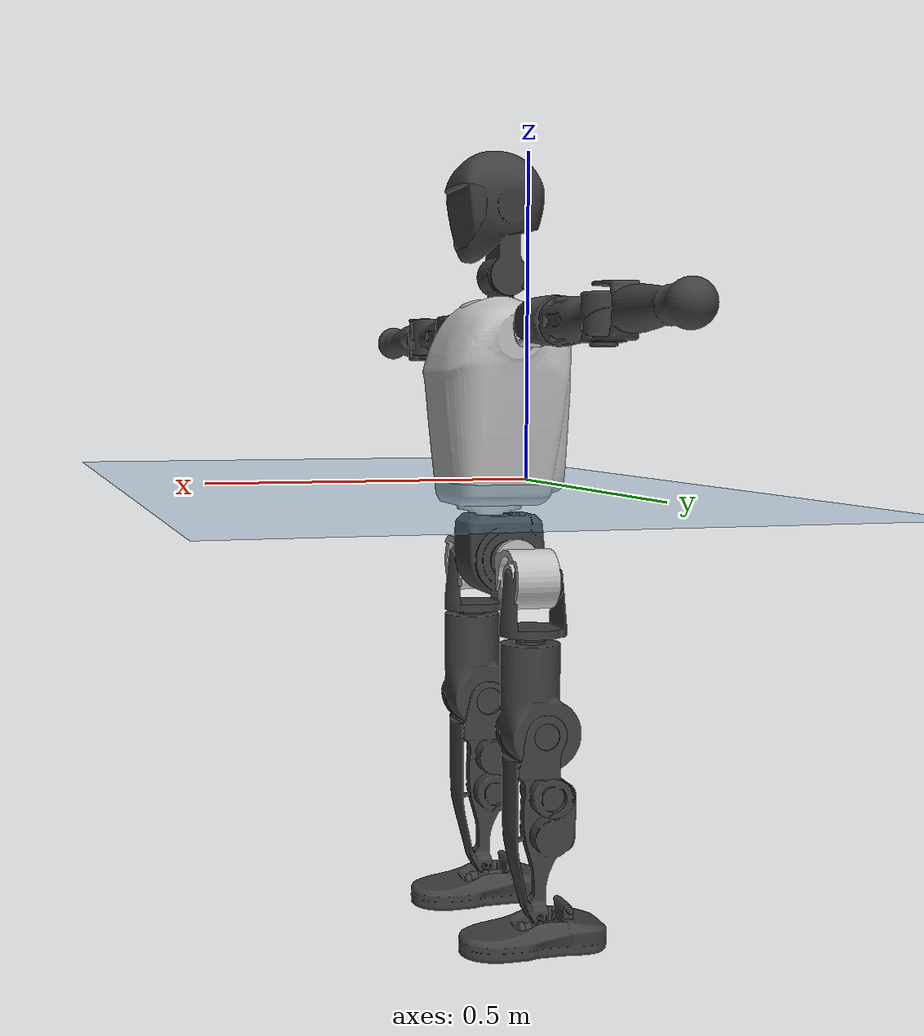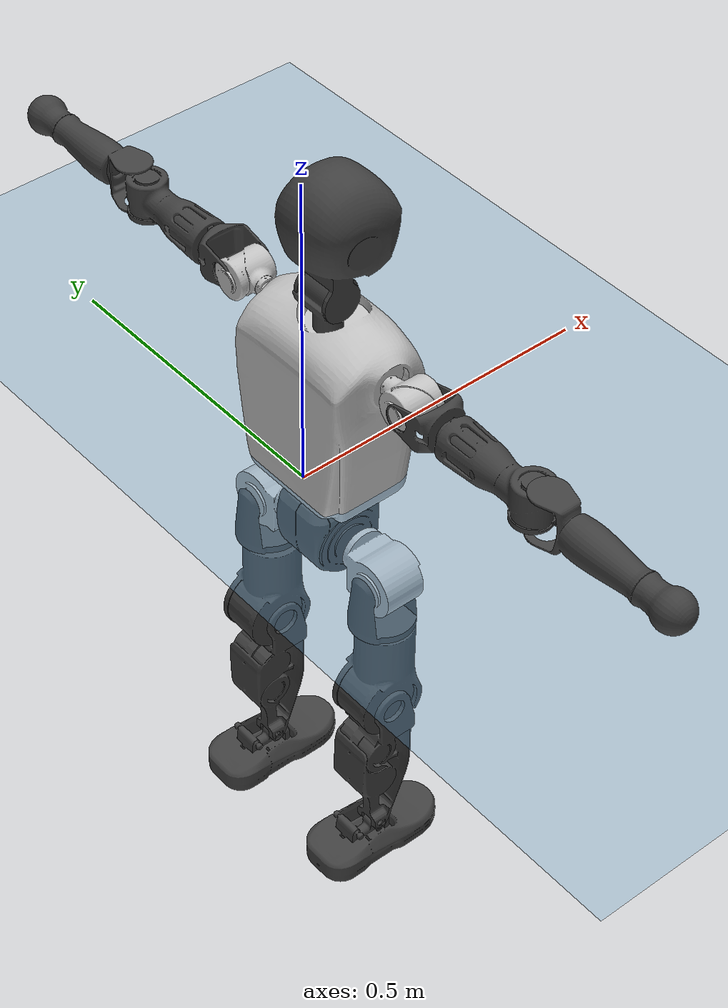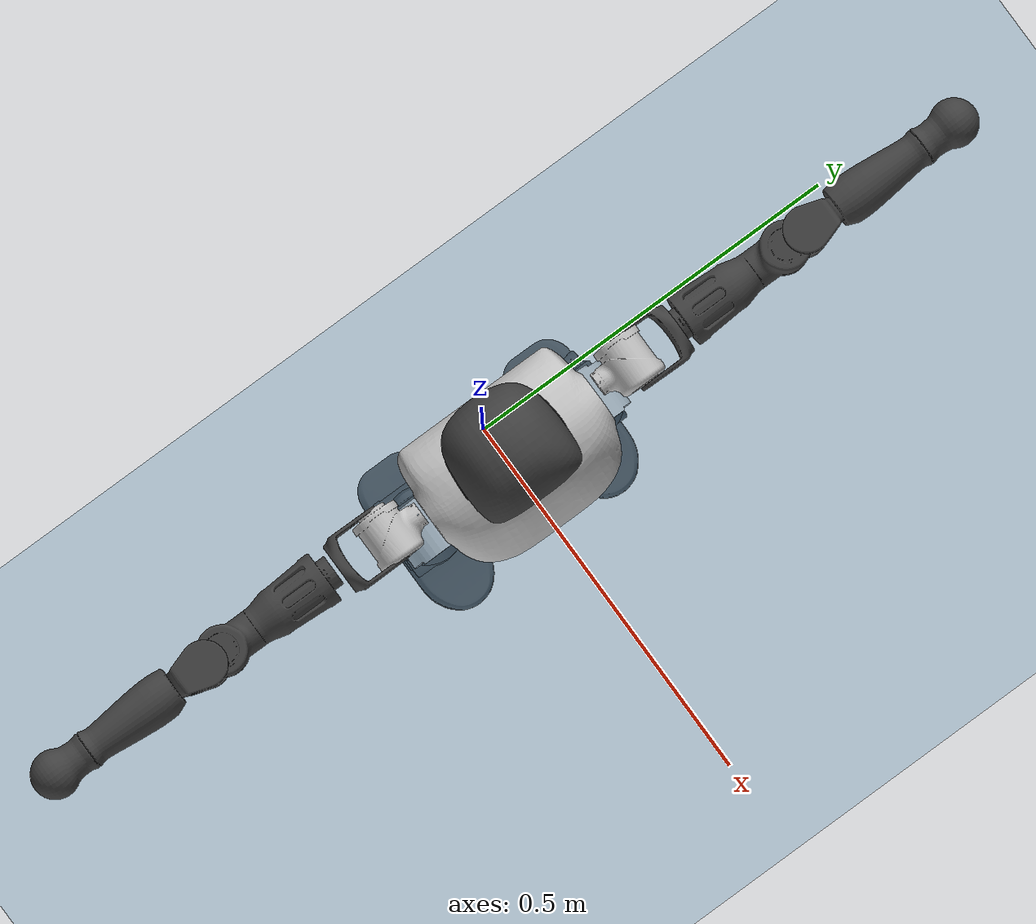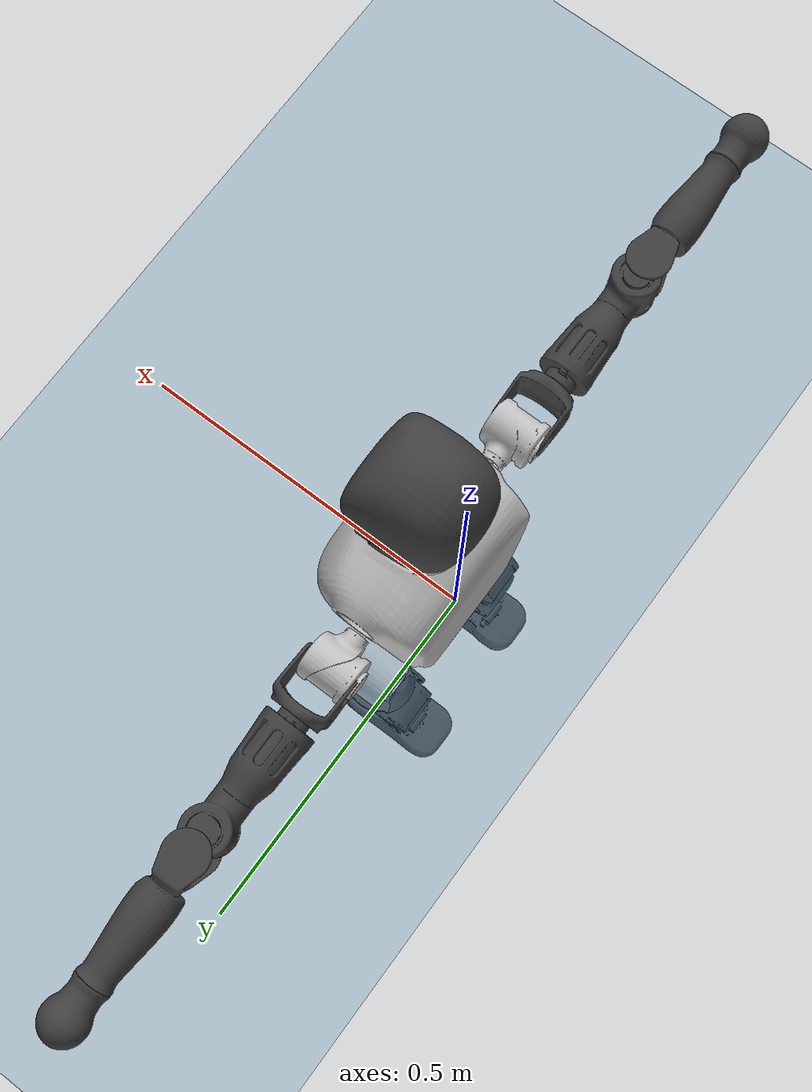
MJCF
<mujoco model="T1">
  <compiler angle="radian" assetdir="assets" balanceinertia="true" inertiafromgeom="false"/>

  <option timestep="0.005" density="1.2" viscosity="2e-05"/>

  <size nkey="1"/>

  <visual>
    <quality shadowsize="8192"/>
    <map shadowclip="0.5"/>
  </visual>

  <default>
    <default class="/">
      <joint armature="0.01" damping="0.01" frictionloss="0.1"/>
      <geom contype="0" conaffinity="0" group="1" solref="-1000 -80"/>
      <site size="0.01 0.005 0.005" group="5"/>
      <general forcelimited="true" biastype="affine" gainprm="25" biasprm="0 -25 -0.6"/>
      <default class="t1">
        <geom rgba="0.25 0.25 0.25 1"/>
        <default class="visual">
          <geom type="mesh" group="2"/>
        </default>
        <default class="collision">
          <geom group="3"/>
        </default>
        <default class="foot">
          <geom size="0.1115 0.05 0.015" type="box" condim="6" group="4" priority="1" solimp="0.015 1 0.015"/>
        </default>
        <default class="reward_collision_sphere">
          <geom group="5" rgba="1 0 0 1"/>
        </default>
      </default>
    </default>
  </default>

  <asset>
    <texture type="skybox" colorspace="auto" name="//unnamed_texture_0" builtin="gradient" rgb1="0.95 0.95 0.95" rgb2="0.95 0.95 0.95" width="100" height="600"/>
    <texture type="2d" colorspace="auto" name="texplane" builtin="checker" rgb1="0.345 0.575 0.748" rgb2="0.345 0.575 0.748" markrgb="1 1 1" width="512" height="512"/>
    <material name="MatPlane" class="/" texture="texplane" texuniform="true" texrepeat="2 2" specular="0.9"/>
    <mesh name="Trunk" class="/" file="Trunk.stl"/>
    <mesh name="H1" class="/" file="H1.stl"/>
    <mesh name="H2" class="/" file="H2.stl"/>
    <mesh name="AL1" class="/" file="AL1.stl"/>
    <mesh name="AL2" class="/" file="AL2.stl"/>
    <mesh name="AL3" class="/" file="AL3.stl"/>
    <mesh name="left_hand_link" class="/" file="left_hand_link.stl"/>
    <mesh name="AR1" class="/" file="AR1.stl"/>
    <mesh name="AR2" class="/" file="AR2.stl"/>
    <mesh name="AR3" class="/" file="AR3.stl"/>
    <mesh name="right_hand_link" class="/" file="right_hand_link.stl"/>
    <mesh name="Waist" class="/" file="Waist.stl"/>
    <mesh name="Hip_Pitch_Left" class="/" file="Hip_Pitch_Left.stl"/>
    <mesh name="Hip_Roll_Left" class="/" file="Hip_Roll_Left.stl"/>
    <mesh name="Hip_Yaw_Left" class="/" file="Hip_Yaw_Left.stl"/>
    <mesh name="Shank_Left" class="/" file="Shank_Left.stl"/>
    <mesh name="Ankle_Cross_Left" class="/" file="Ankle_Cross_Left.stl"/>
    <mesh name="left_foot_link" class="/" file="left_foot_link.stl"/>
    <mesh name="Hip_Pitch_Right" class="/" file="Hip_Pitch_Right.stl"/>
    <mesh name="Hip_Roll_Right" class="/" file="Hip_Roll_Right.stl"/>
    <mesh name="Hip_Yaw_Right" class="/" file="Hip_Yaw_Right.stl"/>
    <mesh name="Shank_Right" class="/" file="Shank_Right.stl"/>
    <mesh name="Ankle_Cross_Right" class="/" file="Ankle_Cross_Right.stl"/>
    <mesh name="right_foot_link" class="/" file="right_foot_link.stl"/>
  </asset>

  <worldbody>
    <geom name="floor" class="/" size="100 100 0.125" type="plane" group="0" material="MatPlane"/>
    <light name="toplight_shadow" class="/" pos="0 0 5" dir="0.0990148 0.0990148 -0.990148" type="directional" ambient="0.04 0.04 0.04" diffuse="0.55 0.55 0.55" specular="0.12 0.12 0.12"/>
    <light name="toplight_fill" class="/" pos="0 0 5" dir="0.0990148 0.0990148 -0.990148" type="directional" castshadow="false" ambient="0.04 0.04 0.04" diffuse="0.3 0.3 0.3" specular="0.08 0.08 0.08"/>
    <body name="trunk" childclass="t1" pos="-7.89332e-05 0.00396595 -0.00109763" quat="1 0.000712731 6.00769e-05 -0.000293984">
      <inertial pos="0.0410996 -0.00141301 0.109177" quat="0.999941 -0.00876146 -0.00465159 0.00435945" mass="12.5226" diaginertia="0.0236047 0.174446 0.0692941"/>
      <joint name="//unnamed_joint_0" type="free" armature="0" damping="0" frictionloss="0"/>
      <geom name="//unnamed_geom_1" class="visual" rgba="0.76 0.76 0.76 1" mesh="Trunk"/>
      <geom name="//unnamed_geom_2" class="collision" size="0.0750721 0.100096 0.150144" pos="0.0458867 0 0.124905" type="box"/>
      <geom name="//unnamed_geom_3" class="reward_collision_sphere" size="0.11511" pos="0.0458867 0 0.104088"/>
      <geom name="//unnamed_geom_4" class="reward_collision_sphere" size="0.0150144" pos="0.0458867 0.101764 0"/>
      <geom name="//unnamed_geom_5" class="reward_collision_sphere" size="0.0150144" pos="0.0458867 -0.101764 0"/>
      <geom name="//unnamed_geom_6" class="reward_collision_sphere" size="0.0150144" pos="0.0458867 0.128103 0.187358"/>
      <geom name="//unnamed_geom_7" class="reward_collision_sphere" size="0.0150144" pos="0.0458867 -0.128103 0.187358"/>
      <site name="imu" pos="0.0103571 0.0267448 0.00813067" size="0.0100096"/>
      <camera name="track" pos="0 -2.39445 0" quat="0.707107 0.707107 0 0" mode="trackcom"/>
      <camera name="ego_camera" pos="0.093303 0 0.437169" quat="-0.5 -0.5 0.5 0.5"/>
      <body name="H1" pos="0.0446256 -0.00303179 0.249771" quat="1 0.000480586 0.000172624 0.000101721">
        <inertial pos="-0.00170504 -0.000640619 0.0580615" quat="0.768894 -0.0498859 0.00631633 0.637396" mass="0.443818" diaginertia="6.63804e-05 0.000542905 0.000191048"/>
        <joint name="AAHead_yaw" pos="0 0 0" axis="0.00917079 0.0256494 0.999629" range="-1.52472 1.61832" armature="0.00923723" damping="0.0112928" frictionloss="0.114225"/>
        <geom name="//unnamed_geom_8" class="visual" mesh="H1"/>
        <body name="H2" pos="-0.0048348 -0.00258438 0.0617883" quat="0.999999 -0.000732804 0.000944389 -6.09638e-05">
          <inertial pos="0.00684706 0.00795368 0.102756" quat="0.988655 0.105252 -0.0664606 -0.0840638" mass="0.661808" diaginertia="0.000569513 0.00541987 0.00218034"/>
          <joint name="Head_pitch" pos="0 0 0" axis="0.0120324 -0.999826 0.0142629" range="-1.26758 0.335867" armature="0.0110633" damping="0.000220141" frictionloss="0.0979425"/>
          <geom name="//unnamed_geom_9" class="visual" mesh="H2"/>
          <geom name="//unnamed_geom_10" class="collision" size="0.0800769" pos="0.00764778 0 0.114497"/>
          <geom name="//unnamed_geom_11" class="reward_collision_sphere" size="0.0900865" pos="0.0152956 0 0.104088"/>
        </body>
      </body>
      <body name="AL1" pos="0.046248 0.128795 0.230357" quat="1 -0.000523545 0.000371703 0.000537262">
        <inertial pos="0.00144344 0.0549348 0.00658241" quat="0.485416 0.519173 -0.500423 0.494376" mass="0.476355" diaginertia="0.000315308 0.00277694 0.000312159"/>
        <joint name="Left_Shoulder_Pitch" pos="0 0 0" axis="0.00448391 0.999704 0.023903" range="-3.29928 1.22016" armature="0.00916811" damping="0" frictionloss="0.111269"/>
        <geom name="//unnamed_geom_12" class="visual" rgba="0.76 0.76 0.76 1" mesh="AL1"/>
        <body name="AL2" pos="0.00134636 0.0599225 0.00428711" quat="0.999991 -0.00280446 -0.0014482 -0.00274949">
          <inertial pos="0.00606967 0.0531472 -0.000444176" quat="0.48605 0.512029 -0.489592 0.511743" mass="0.165008" diaginertia="0.000103522 0.000862058 0.000221248"/>
          <joint name="Left_Shoulder_Roll" pos="0 0 0" axis="-0.999232 -0.0376667 -0.0107549" stiffness="0.034403" range="-1.68836 1.71706" armature="0.00994994" damping="0.0430102" frictionloss="0.072727"/>
          <geom name="//unnamed_geom_13" class="visual" mesh="AL2"/>
          <body name="AL3" pos="-0.00216634 0.0650655 -0.00213417" quat="0.999995 -0.00149831 0.00109133 0.00245308">
            <inertial pos="-0.00119814 0.106664 -0.00094428" quat="0.708149 0.706032 0.000769225 0.00650876" mass="0.931319" diaginertia="0.00345149 0.0299493 0.000836254"/>
            <joint name="Left_Elbow_Pitch" pos="0 0 0" axis="0.0150285 -0.999798 -0.0133621" stiffness="0.0201721" range="-2.42699 2.4064" armature="0.00682214" damping="0.033473" frictionloss="0.0829985"/>
            <geom name="//unnamed_geom_14" class="visual" mesh="AL3"/>
            <geom name="//unnamed_geom_15" class="collision" size="0.0300288 0.0750721" pos="0 0.0598613 0" quat="0.707105 0.707108 0 0" type="cylinder"/>
            <geom name="//unnamed_geom_16" class="reward_collision_sphere" size="0.0360346"/>
            <body name="left_hand_link" pos="-0.000497198 0.177115 0.00647152" quat="0.999999 -0.000359511 -0.00119633 6.30363e-05">
              <inertial pos="2.94454e-05 0.13201 0.00444305" quat="0.701669 0.712466 -0.00642458 0.00331611" mass="0.32237" diaginertia="0.00211723 0.0194126 0.000268148"/>
              <joint name="Left_Elbow_Yaw" pos="0 0 0" axis="0.00046967 -0.00843591 0.999964" range="-2.45768 0.0250728" armature="0.00931297" damping="0.0184017" frictionloss="0.0923434"/>
              <geom name="//unnamed_geom_17" class="visual" mesh="left_hand_link"/>
              <geom name="//unnamed_geom_18" class="collision" size="0.0300288 0.0875841" pos="0 0.155639 0" quat="0.707105 0.707108 0 0" type="cylinder"/>
              <geom name="//unnamed_geom_19" class="reward_collision_sphere" size="0.050048"/>
              <geom name="//unnamed_geom_20" class="reward_collision_sphere" size="0.0350336" pos="0 0.131695 0"/>
              <geom name="//unnamed_geom_21" class="reward_collision_sphere" size="0.0350336" pos="0 0.257404 0"/>
            </body>
          </body>
        </body>
      </body>
      <body name="AR1" pos="0.045129 -0.126041 0.227891" quat="1 0.00019327 0.000251055 -2.78933e-05">
        <inertial pos="0.0008198 -0.0483613 -0.00581637" quat="0.50854 0.49885 -0.498856 0.493638" mass="0.530627" diaginertia="0.000382715 0.00316391 0.000350276"/>
        <joint name="Right_Shoulder_Pitch" pos="0 0 0" axis="-0.00427056 -0.999985 -0.00348764" stiffness="0.00799661" range="-1.25026 3.30947" armature="0.0109179" damping="0.0130856" frictionloss="0.109488"/>
        <geom name="//unnamed_geom_22" class="visual" rgba="0.76 0.76 0.76 1" mesh="AR1"/>
        <body name="AR2" pos="-0.00301899 -0.0605934 0.0029312" quat="1 -7.32476e-05 0.000625713 0.000655554">
          <inertial pos="0.00391899 -0.0454549 0.00654534" quat="0.51597 0.488108 -0.506806 0.488542" mass="0.161172" diaginertia="0.000110142 0.00093215 0.000232514"/>
          <joint name="Right_Shoulder_Roll" pos="0 0 0" axis="-0.999825 -0.0171136 -0.00760233" range="-1.76072 1.46633" armature="0.00967347" damping="0.0297302" frictionloss="0.0965446"/>
          <geom name="//unnamed_geom_23" class="visual" mesh="AR2"/>
          <body name="AR3" pos="-0.00323788 -0.0742617 0.00172212" quat="0.999999 0.000136166 -0.0010893 -0.000418043">
            <inertial pos="0.000548339 -0.10096 -0.00194888" quat="0.707813 0.7064 -5.49083e-05 0.00014998" mass="1.05903" diaginertia="0.00340403 0.0306023 0.000753528"/>
            <joint name="Right_Elbow_Pitch" pos="0 0 0" axis="0.00016373 0.999996 -0.0028037" stiffness="0.00935602" range="-2.25998 2.28088" armature="0.00698354" damping="0.00614126" frictionloss="0.128481"/>
            <geom name="//unnamed_geom_24" class="visual" mesh="AR3"/>
            <geom name="//unnamed_geom_25" class="collision" size="0.0300288 0.0750721" pos="0 -0.0598613 0" quat="0.707105 0.707108 0 0" type="cylinder"/>
            <geom name="//unnamed_geom_26" class="reward_collision_sphere" size="0.0360346"/>
            <body name="right_hand_link" pos="0.000472402 -0.173239 -0.00239895" quat="1 -0.00063127 -0.000529855 -0.000138903">
              <inertial pos="-0.00124163 -0.133186 0.00794628" quat="0.705728 0.707652 -0.0342348 0.00218933" mass="0.291713" diaginertia="0.00226692 0.0200097 0.00025501"/>
              <joint name="Right_Elbow_Yaw" pos="0 0 0" axis="0.00859776 -0.000630355 0.999963" stiffness="0.0271727" range="0.116474 2.30107" armature="0.00923674" damping="0" frictionloss="0.106883"/>
              <geom name="//unnamed_geom_27" class="visual" mesh="right_hand_link"/>
              <geom name="//unnamed_geom_28" class="collision" size="0.0300288 0.0875841" pos="0 -0.155639 0" quat="0.707105 0.707108 0 0" type="cylinder"/>
              <geom name="//unnamed_geom_29" class="reward_collision_sphere" size="0.050048"/>
              <geom name="//unnamed_geom_30" class="reward_collision_sphere" size="0.0350336" pos="0 -0.131695 0"/>
              <geom name="//unnamed_geom_31" class="reward_collision_sphere" size="0.0350336" pos="0 -0.257404 0"/>
            </body>
          </body>
        </body>
      </body>
      <body name="Waist" pos="0.0471319 -0.000134722 -0.1178" quat="1 6.92808e-05 -3.40541e-05 4.44665e-05">
        <inertial pos="0.00486829 0.000679896 0.00670912" quat="0.984136 -0.0039996 -0.177365 0.00145008" mass="2.65023" diaginertia="0.00147231 0.0126553 0.00579622"/>
        <joint name="Waist" pos="0 0 0" axis="0.0198413 0.0158853 0.999677" stiffness="0.0405286" range="-1.58173 1.52726" armature="0.01013" damping="0" frictionloss="0.122934"/>
        <geom name="//unnamed_geom_32" class="visual" mesh="Waist"/>
        <body name="Hip_Pitch_Left" pos="-0.00454171 0.121417 -0.000511374" quat="1 3.73961e-05 0.00020137 -0.000191952">
          <inertial pos="-0.00610725 -0.0093522 -0.0135968" quat="0.969344 0.242754 0.0350672 -0.0145896" mass="0.999189" diaginertia="0.000487853 0.00365384 0.00154983"/>
          <joint name="Left_Hip_Pitch" pos="0 0 0" axis="0.000611279 1 -1.18872e-05" range="-1.79631 1.45826" armature="0.00882371" damping="0.0283689" frictionloss="0.0894837"/>
          <geom name="//unnamed_geom_33" class="visual" rgba="0.76 0.76 0.76 1" mesh="Hip_Pitch_Left"/>
          <body name="Hip_Roll_Left" pos="-0.00454044 0.00181669 -0.0264551" quat="1 0.000616463 3.15738e-05 0.000430574">
            <inertial pos="0.00323682 -0.0041639 -0.0569854" quat="0.703947 -0.00343735 0.00764276 0.710203" mass="0.431733" diaginertia="0.00045928 0.00430936 0.000692364"/>
            <joint name="Left_Hip_Roll" pos="0 0 0" axis="-1 9.51454e-05 -0.000513157" range="-1.58978 0.194428" armature="0.0109302" damping="0.0165808" frictionloss="0.114576"/>
            <geom name="//unnamed_geom_34" class="visual" mesh="Hip_Roll_Left"/>
            <geom name="//unnamed_geom_35" class="reward_collision_sphere" size="0.0550528"/>
            <body name="Hip_Yaw_Left" pos="9.20634e-05 -0.00357699 -0.088842" quat="1 -0.000438818 0.000354819 -0.000460246">
              <inertial pos="-0.00601511 -0.000919273 -0.0951337" quat="0.697559 -0.0175467 -0.0594594 0.713841" mass="2.29958" diaginertia="0.00685923 0.0645085 0.00317545"/>
              <joint name="Left_Hip_Yaw" pos="0 0 0" axis="0.0288767 -0.00352633 -0.999577" range="-1.02418 1.07764" armature="0.00889369" damping="0.00227232" frictionloss="0.105266"/>
              <geom name="//unnamed_geom_36" class="visual" mesh="Hip_Yaw_Left"/>
              <geom name="//unnamed_geom_37" class="collision" size="0.050048 0.0800769" type="cylinder"/>
              <body name="Shank_Left" pos="-0.0138887 -0.00541628 -0.134688" quat="0.999999 -0.000585952 0.000241858 -0.00127619">
                <inertial pos="-0.002488 0.00722807 -0.128973" quat="0.996808 0.00444433 -0.0234499 0.0761816" mass="1.69687" diaginertia="0.00803103 0.0849306 0.00201447"/>
                <joint name="Left_Knee_Pitch" pos="0 0 0" axis="0.00363421 0.999982 -0.00487314" range="-0.0220525 2.32732" armature="0.0105455" damping="0.00356315" frictionloss="0.0585196"/>
                <geom name="//unnamed_geom_38" class="visual" mesh="Shank_Left"/>
                <geom name="//unnamed_geom_39" class="collision" size="0.050048 0.0750721" pos="0 0 -0.124905" type="cylinder"/>
                <geom name="//unnamed_geom_40" class="reward_collision_sphere" size="0.0650625"/>
                <body name="Ankle_Cross_Left" pos="0.000918441 0.00198849 -0.28929" quat="1 8.4493e-05 3.3991e-05 -0.000161496">
                  <inertial pos="-0.00446945 -0.00171699 -0.00987332" quat="0.436391 0.547228 0.55647 0.447712" mass="0.0832212" diaginertia="7.95416e-06 7.56519e-05 1.48124e-05"/>
                  <joint name="Left_Ankle_Pitch" pos="0 0 0" axis="-0.0351694 0.999373 0.0040753" stiffness="0.0332149" range="-0.882706 0.315049" armature="0.0102047" damping="0.0054881" frictionloss="0.102932"/>
                  <geom name="//unnamed_geom_41" class="visual" mesh="Ankle_Cross_Left"/>
                  <body name="left_foot_link" pos="-0.00301611 -0.00126323 -0.0131164" quat="0.999994 0.00202515 -0.0019017 -0.0022316">
                    <inertial pos="-0.00619528 0.00119955 -0.00966145" quat="0.00967589 0.623322 -0.0179675 0.781699" mass="0.66427" diaginertia="0.000700962 0.00580757 0.00277538"/>
                    <joint name="Left_Ankle_Roll" pos="0 0 0" axis="-0.999917 0.0045836 0.0120795" range="-0.445732 0.464689" armature="0.00981687" damping="0.0203831" frictionloss="0.102371"/>
                    <geom name="//unnamed_geom_42" class="visual" mesh="left_foot_link"/>
                    <geom name="left_foot" class="foot" size="0.095326 0.0497848 0.0195978" pos="0.00764778 0 -0.0156132"/>
                    <geom name="//unnamed_geom_44" class="reward_collision_sphere" size="0.05205" pos="0.00764778 0 -0.0156132"/>
                    <geom name="//unnamed_geom_45" class="reward_collision_sphere" size="0.0300288" pos="0.0726539 -0.0275362 -0.0156132"/>
                    <geom name="//unnamed_geom_46" class="reward_collision_sphere" size="0.0300288" pos="-0.0535345 -0.0275362 -0.0156132"/>
                    <site name="left_foot" class="foot" pos="0.00764778 0 -0.0156132" size="0.0100096"/>
                  </body>
                </body>
              </body>
            </body>
          </body>
        </body>
        <body name="Hip_Pitch_Right" pos="0.00371484 -0.124301 -0.00117845" quat="0.999999 0.0007053 0.000317573 0.00097473">
          <inertial pos="0.00192763 0.00779366 -0.0229117" quat="0.972214 -0.232968 0.0229034 -0.0014074" mass="0.983014" diaginertia="0.000471171 0.00345632 0.0014421"/>
          <joint name="Right_Hip_Pitch" pos="0 0 0" axis="0.0106476 -0.999931 0.00499177" stiffness="0.00445048" range="-1.57014 1.74722" armature="0.00892738" damping="0.019811" frictionloss="0.0848821"/>
          <geom name="//unnamed_geom_47" class="visual" rgba="0.76 0.76 0.76 1" mesh="Hip_Pitch_Right"/>
          <body name="Hip_Roll_Right" pos="-0.00491163 -0.00139241 -0.020311" quat="1 -2.74932e-06 -3.75653e-05 0.000276207">
            <inertial pos="0.00593475 0.00103741 -0.0521426" quat="0.705583 -0.00842696 -0.00929654 0.708516" mass="0.35493" diaginertia="0.000459124 0.00364089 0.000615096"/>
            <joint name="Right_Hip_Roll" pos="0 0 0" axis="-1 0.000319196 -0.000367355" stiffness="0.000564153" range="-0.167308 1.52285" armature="0.00941052" damping="0.00522195" frictionloss="0.105042"/>
            <geom name="//unnamed_geom_48" class="visual" mesh="Hip_Roll_Right"/>
            <geom name="//unnamed_geom_49" class="reward_collision_sphere" size="0.0550528"/>
            <body name="Hip_Yaw_Right" pos="0.00178891 -0.00217253 -0.0842081" quat="0.999999 -1.80126e-05 0.000558634 -0.000870387">
              <inertial pos="-0.00478459 0.00499571 -0.099517" quat="0.72098 -0.0336581 -0.0298483 0.691494" mass="2.00802" diaginertia="0.00655506 0.0551128 0.00311552"/>
              <joint name="Right_Hip_Yaw" pos="0 0 0" axis="0.000231825 -0.00110858 -0.999999" range="-1.06497 1.00603" armature="0.0134702" damping="0.0101237" frictionloss="0.0898168"/>
              <geom name="//unnamed_geom_50" class="visual" mesh="Hip_Yaw_Right"/>
              <geom name="//unnamed_geom_51" class="collision" size="0.050048 0.0800769" type="cylinder"/>
              <body name="Shank_Right" pos="-0.016734 -0.00152539 -0.139713" quat="1 3.4211e-05 1.43237e-06 8.00685e-05">
                <inertial pos="-0.0116772 -0.00831712 -0.127034" quat="0.999251 0.0113993 -0.0298969 -0.0217421" mass="1.641" diaginertia="0.00752646 0.0779073 0.00222745"/>
                <joint name="Right_Knee_Pitch" pos="0 0 0" axis="0.0320039 -0.999469 -0.00611578" range="-2.3348 -0.000834648" armature="0.0107253" damping="0.00719466" frictionloss="0.0971485"/>
                <geom name="//unnamed_geom_52" class="visual" mesh="Shank_Right"/>
                <geom name="//unnamed_geom_53" class="collision" size="0.050048 0.0750721" pos="0 0 -0.124905" type="cylinder"/>
                <geom name="//unnamed_geom_54" class="reward_collision_sphere" size="0.0650625"/>
                <body name="Ankle_Cross_Right" pos="-0.0013961 0.000924105 -0.291165" quat="1 0.000292213 0.000390726 -0.000495922">
                  <inertial pos="-0.00225858 -0.00138599 -0.00814614" quat="0.443281 0.548034 0.55438 0.44252" mass="0.0763812" diaginertia="7.27158e-06 6.33456e-05 1.41074e-05"/>
                  <joint name="Right_Ankle_Pitch" pos="0 0 0" axis="0.0345737 -0.999168 0.0216404" range="-0.365773 0.902137" armature="0.0108171" damping="0.0102053" frictionloss="0.105496"/>
                  <geom name="//unnamed_geom_55" class="visual" mesh="Ankle_Cross_Right"/>
                  <body name="right_foot_link" pos="-0.000566241 0.00405211 -0.0161791" quat="1 -0.000669141 0.000491143 0.000247265">
                    <inertial pos="-0.00708613 -0.000822956 -0.0117067" quat="-0.00740592 0.618349 0.0157507 0.785711" mass="0.703018" diaginertia="0.000633899 0.00569773 0.0026879"/>
                    <joint name="Right_Ankle_Roll" pos="0 0 0" axis="-0.999781 0.00966784 -0.0185427" range="-0.444229 0.431079" armature="0.01024" damping="0.0013758" frictionloss="0.130629"/>
                    <geom name="//unnamed_geom_56" class="visual" mesh="right_foot_link"/>
                    <geom name="right_foot" class="foot" size="0.0981533 0.04749 0.0161711" pos="0.00764778 0 -0.0156132"/>
                    <geom name="//unnamed_geom_58" class="reward_collision_sphere" size="0.0400384"/>
                    <geom name="//unnamed_geom_59" class="reward_collision_sphere" size="0.0300288" pos="0.00764778 0 -0.0156132"/>
                    <geom name="//unnamed_geom_60" class="reward_collision_sphere" size="0.0300288" pos="0.0726539 0.0275362 -0.0156132"/>
                    <geom name="//unnamed_geom_61" class="reward_collision_sphere" size="0.0300288" pos="-0.0535345 0.0275362 -0.0156132"/>
                    <site name="right_foot" class="foot" pos="0.00764778 0 -0.0156132" size="0.0100096"/>
                  </body>
                </body>
              </body>
            </body>
          </body>
        </body>
      </body>
    </body>
  </worldbody>

  <contact>
    <pair class="/" geom1="floor" geom2="left_foot" name="//unnamed_contact_0"/>
    <pair class="/" geom1="floor" geom2="right_foot" name="//unnamed_contact_1"/>
  </contact>

  <actuator>
    <general name="AAHead_yaw" class="/" joint="AAHead_yaw" forcerange="-8.37939 8.37939" gainprm="23.8835" biasprm="0 -23.8835 -0.645082"/>
    <general name="Head_pitch" class="/" joint="Head_pitch" forcerange="-7.13679 7.13679" gainprm="23.8835" biasprm="0 -23.8835 -0.645082"/>
    <general name="Left_Shoulder_Pitch" class="/" joint="Left_Shoulder_Pitch" forcerange="-18.6102 18.6102" gainprm="23.8835" biasprm="0 -23.8835 -0.645082"/>
    <general name="Left_Shoulder_Roll" class="/" joint="Left_Shoulder_Roll" forcerange="-17.9099 17.9099" gainprm="23.8835" biasprm="0 -23.8835 -0.645082"/>
    <general name="Left_Elbow_Pitch" class="/" joint="Left_Elbow_Pitch" forcerange="-15.5414 15.5414" gainprm="23.8835" biasprm="0 -23.8835 -0.645082"/>
    <general name="Left_Elbow_Yaw" class="/" joint="Left_Elbow_Yaw" forcerange="-13.1762 13.1762" gainprm="23.8835" biasprm="0 -23.8835 -0.645082"/>
    <general name="Right_Shoulder_Pitch" class="/" joint="Right_Shoulder_Pitch" forcerange="-17.8703 17.8703" gainprm="23.8835" biasprm="0 -23.8835 -0.645082"/>
    <general name="Right_Shoulder_Roll" class="/" joint="Right_Shoulder_Roll" forcerange="-15.4886 15.4886" gainprm="23.8835" biasprm="0 -23.8835 -0.645082"/>
    <general name="Right_Elbow_Pitch" class="/" joint="Right_Elbow_Pitch" forcerange="-16.7723 16.7723" gainprm="23.8835" biasprm="0 -23.8835 -0.645082"/>
    <general name="Right_Elbow_Yaw" class="/" joint="Right_Elbow_Yaw" forcerange="-20.1741 20.1741" gainprm="23.8835" biasprm="0 -23.8835 -0.645082"/>
    <general name="Waist" class="/" joint="Waist" forcerange="-30.3339 30.3339" gainprm="23.8835" biasprm="0 -23.8835 -0.645082"/>
    <general name="Left_Hip_Pitch" class="/" joint="Left_Hip_Pitch" forcerange="-42.3585 42.3585" gainprm="23.8835" biasprm="0 -23.8835 -0.645082"/>
    <general name="Left_Hip_Roll" class="/" joint="Left_Hip_Roll" forcerange="-27.6072 27.6072" gainprm="23.8835" biasprm="0 -23.8835 -0.645082"/>
    <general name="Left_Hip_Yaw" class="/" joint="Left_Hip_Yaw" forcerange="-31.2093 31.2093" gainprm="23.8835" biasprm="0 -23.8835 -0.645082"/>
    <general name="Left_Knee_Pitch" class="/" joint="Left_Knee_Pitch" forcerange="-59.8421 59.8421" gainprm="23.8835" biasprm="0 -23.8835 -0.645082"/>
    <general name="Left_Ankle_Pitch" class="/" joint="Left_Ankle_Pitch" forcerange="-21.1356 21.1356" gainprm="23.8835" biasprm="0 -23.8835 -0.645082"/>
    <general name="Left_Ankle_Roll" class="/" joint="Left_Ankle_Roll" forcerange="-14.9042 14.9042" gainprm="23.8835" biasprm="0 -23.8835 -0.645082"/>
    <general name="Right_Hip_Pitch" class="/" joint="Right_Hip_Pitch" forcerange="-41.7316 41.7316" gainprm="23.8835" biasprm="0 -23.8835 -0.645082"/>
    <general name="Right_Hip_Roll" class="/" joint="Right_Hip_Roll" forcerange="-30.1522 30.1522" gainprm="23.8835" biasprm="0 -23.8835 -0.645082"/>
    <general name="Right_Hip_Yaw" class="/" joint="Right_Hip_Yaw" forcerange="-32.1712 32.1712" gainprm="23.8835" biasprm="0 -23.8835 -0.645082"/>
    <general name="Right_Knee_Pitch" class="/" joint="Right_Knee_Pitch" forcerange="-61.5672 61.5672" gainprm="23.8835" biasprm="0 -23.8835 -0.645082"/>
    <general name="Right_Ankle_Pitch" class="/" joint="Right_Ankle_Pitch" forcerange="-22.7393 22.7393" gainprm="23.8835" biasprm="0 -23.8835 -0.645082"/>
    <general name="Right_Ankle_Roll" class="/" joint="Right_Ankle_Roll" forcerange="-14.0504 14.0504" gainprm="23.8835" biasprm="0 -23.8835 -0.645082"/>
  </actuator>

  <sensor>
    <gyro site="imu" name="imu_angular_velocity"/>
    <velocimeter site="imu" name="imu_linear_velocity"/>
    <framelinvel objtype="site" objname="left_foot" name="left_foot_global_linear_velocity"/>
    <framelinvel objtype="site" objname="right_foot" name="right_foot_global_linear_velocity"/>
  </sensor>

  <keyframe>
    <key name="home" qpos="0 0 0.6385 1 0 0 0 0 0 0 1.4 0 -0.4 0 -1.4 0 0.4 0 -0.4 0 0 0.8 -0.4 0 0.4 0 0 -0.8 0.4 0"/>
  </keyframe>
</mujoco>
